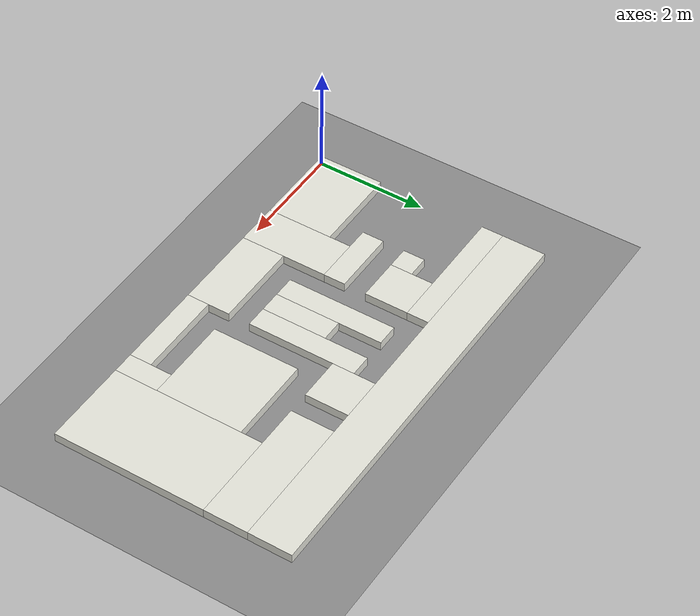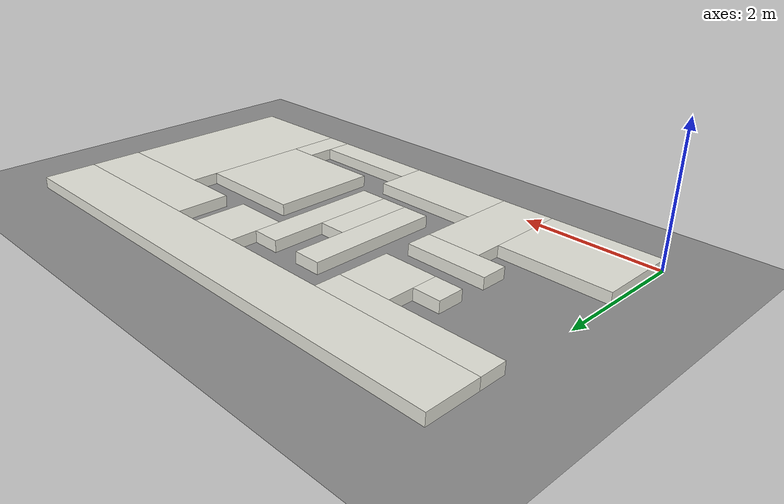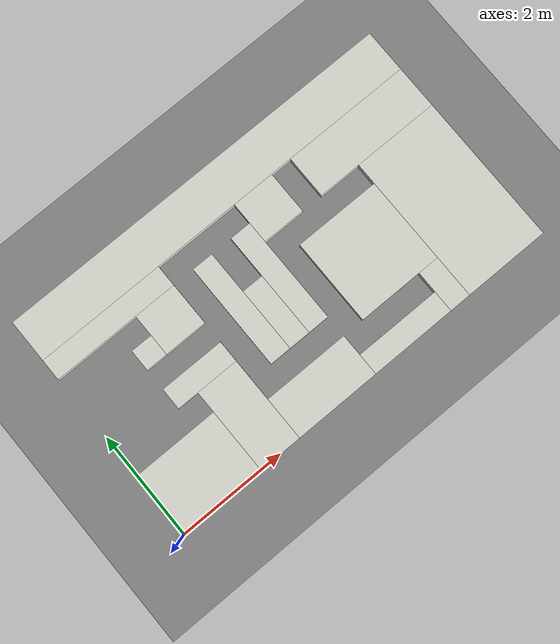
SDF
<sdf version="1.9">
 <world name="ros2_world">
  <model name="ground_plane">
   <static>true</static>
   <link name="link">
    <collision name="collision">
     <geometry><plane><normal>0 0 1</normal><size>30 30</size></plane></geometry>
    </collision>
    <visual name="visual">
     <geometry><plane><normal>0 0 1</normal><size>30 30</size></plane></geometry>
     <material><ambient>0.55 0.55 0.55 1</ambient><diffuse>0.55 0.55 0.55 1</diffuse></material>
    </visual>
   </link>
  </model>
  <model name="paredes">
   <static>true</static>
   <link name="bloque_0">
    <pose>3.8 4 0.085 0 0 0</pose>
    <collision name="colision"><geometry><box><size>7.6 0.8 0.17</size></box></geometry></collision>
    <visual name="visual">
     <geometry><box><size>7.6 0.8 0.17</size></box></geometry>
     <material><ambient>0.9 0.9 0.86 1</ambient><diffuse>0.9 0.9 0.86 1</diffuse></material>
    </visual>
   </link>
   <link name="bloque_1">
    <pose>1.2 3.4 0.085 0 0 0</pose>
    <collision name="colision"><geometry><box><size>2.4 0.4 0.17</size></box></geometry></collision>
    <visual name="visual">
     <geometry><box><size>2.4 0.4 0.17</size></box></geometry>
     <material><ambient>0.9 0.9 0.86 1</ambient><diffuse>0.9 0.9 0.86 1</diffuse></material>
    </visual>
   </link>
   <link name="bloque_2">
    <pose>4.4 3.2 0.085 0 0 0</pose>
    <collision name="colision"><geometry><box><size>0.8 0.8 0.17</size></box></geometry></collision>
    <visual name="visual">
     <geometry><box><size>0.8 0.8 0.17</size></box></geometry>
     <material><ambient>0.9 0.9 0.86 1</ambient><diffuse>0.9 0.9 0.86 1</diffuse></material>
    </visual>
   </link>
   <link name="bloque_3">
    <pose>6.4 3.2 0.085 0 0 0</pose>
    <collision name="colision"><geometry><box><size>2.4 0.8 0.17</size></box></geometry></collision>
    <visual name="visual">
     <geometry><box><size>2.4 0.8 0.17</size></box></geometry>
     <material><ambient>0.9 0.9 0.86 1</ambient><diffuse>0.9 0.9 0.86 1</diffuse></material>
    </visual>
   </link>
   <link name="bloque_4">
    <pose>2 2.8 0.085 0 0 0</pose>
    <collision name="colision"><geometry><box><size>0.8 0.8 0.17</size></box></geometry></collision>
    <visual name="visual">
     <geometry><box><size>0.8 0.8 0.17</size></box></geometry>
     <material><ambient>0.9 0.9 0.86 1</ambient><diffuse>0.9 0.9 0.86 1</diffuse></material>
    </visual>
   </link>
   <link name="bloque_5">
    <pose>3 2.2 0.085 0 0 0</pose>
    <collision name="colision"><geometry><box><size>0.4 2 0.17</size></box></geometry></collision>
    <visual name="visual">
     <geometry><box><size>0.4 2 0.17</size></box></geometry>
     <material><ambient>0.9 0.9 0.86 1</ambient><diffuse>0.9 0.9 0.86 1</diffuse></material>
    </visual>
   </link>
   <link name="bloque_6">
    <pose>3.8 2.2 0.085 0 0 0</pose>
    <collision name="colision"><geometry><box><size>0.4 2 0.17</size></box></geometry></collision>
    <visual name="visual">
     <geometry><box><size>0.4 2 0.17</size></box></geometry>
     <material><ambient>0.9 0.9 0.86 1</ambient><diffuse>0.9 0.9 0.86 1</diffuse></material>
    </visual>
   </link>
   <link name="bloque_7">
    <pose>1.4 2.6 0.085 0 0 0</pose>
    <collision name="colision"><geometry><box><size>0.4 0.4 0.17</size></box></geometry></collision>
    <visual name="visual">
     <geometry><box><size>0.4 0.4 0.17</size></box></geometry>
     <material><ambient>0.9 0.9 0.86 1</ambient><diffuse>0.9 0.9 0.86 1</diffuse></material>
    </visual>
   </link>
   <link name="bloque_8">
    <pose>6.8 1.4 0.085 0 0 0</pose>
    <collision name="colision"><geometry><box><size>1.6 2.8 0.17</size></box></geometry></collision>
    <visual name="visual">
     <geometry><box><size>1.6 2.8 0.17</size></box></geometry>
     <material><ambient>0.9 0.9 0.86 1</ambient><diffuse>0.9 0.9 0.86 1</diffuse></material>
    </visual>
   </link>
   <link name="bloque_9">
    <pose>3.4 1.8 0.085 0 0 0</pose>
    <collision name="colision"><geometry><box><size>0.4 1.2 0.17</size></box></geometry></collision>
    <visual name="visual">
     <geometry><box><size>0.4 1.2 0.17</size></box></geometry>
     <material><ambient>0.9 0.9 0.86 1</ambient><diffuse>0.9 0.9 0.86 1</diffuse></material>
    </visual>
   </link>
   <link name="bloque_10">
    <pose>5.2 1.6 0.085 0 0 0</pose>
    <collision name="colision"><geometry><box><size>1.6 1.6 0.17</size></box></geometry></collision>
    <visual name="visual">
     <geometry><box><size>1.6 1.6 0.17</size></box></geometry>
     <material><ambient>0.9 0.9 0.86 1</ambient><diffuse>0.9 0.9 0.86 1</diffuse></material>
    </visual>
   </link>
   <link name="bloque_11">
    <pose>1.8 1.8 0.085 0 0 0</pose>
    <collision name="colision"><geometry><box><size>1.2 0.4 0.17</size></box></geometry></collision>
    <visual name="visual">
     <geometry><box><size>1.2 0.4 0.17</size></box></geometry>
     <material><ambient>0.9 0.9 0.86 1</ambient><diffuse>0.9 0.9 0.86 1</diffuse></material>
    </visual>
   </link>
   <link name="bloque_12">
    <pose>2 0.8 0.085 0 0 0</pose>
    <collision name="colision"><geometry><box><size>0.8 1.6 0.17</size></box></geometry></collision>
    <visual name="visual">
     <geometry><box><size>0.8 1.6 0.17</size></box></geometry>
     <material><ambient>0.9 0.9 0.86 1</ambient><diffuse>0.9 0.9 0.86 1</diffuse></material>
    </visual>
   </link>
   <link name="bloque_13">
    <pose>0.8 0.6 0.085 0 0 0</pose>
    <collision name="colision"><geometry><box><size>1.6 1.2 0.17</size></box></geometry></collision>
    <visual name="visual">
     <geometry><box><size>1.6 1.2 0.17</size></box></geometry>
     <material><ambient>0.9 0.9 0.86 1</ambient><diffuse>0.9 0.9 0.86 1</diffuse></material>
    </visual>
   </link>
   <link name="bloque_14">
    <pose>3.2 0.4 0.085 0 0 0</pose>
    <collision name="colision"><geometry><box><size>1.6 0.8 0.17</size></box></geometry></collision>
    <visual name="visual">
     <geometry><box><size>1.6 0.8 0.17</size></box></geometry>
     <material><ambient>0.9 0.9 0.86 1</ambient><diffuse>0.9 0.9 0.86 1</diffuse></material>
    </visual>
   </link>
   <link name="bloque_15">
    <pose>5.8 0.4 0.085 0 0 0</pose>
    <collision name="colision"><geometry><box><size>0.4 0.8 0.17</size></box></geometry></collision>
    <visual name="visual">
     <geometry><box><size>0.4 0.8 0.17</size></box></geometry>
     <material><ambient>0.9 0.9 0.86 1</ambient><diffuse>0.9 0.9 0.86 1</diffuse></material>
    </visual>
   </link>
   <link name="bloque_16">
    <pose>4.8 0.2 0.085 0 0 0</pose>
    <collision name="colision"><geometry><box><size>1.6 0.4 0.17</size></box></geometry></collision>
    <visual name="visual">
     <geometry><box><size>1.6 0.4 0.17</size></box></geometry>
     <material><ambient>0.9 0.9 0.86 1</ambient><diffuse>0.9 0.9 0.86 1</diffuse></material>
    </visual>
   </link>
  </model>
 </world>
</sdf>
